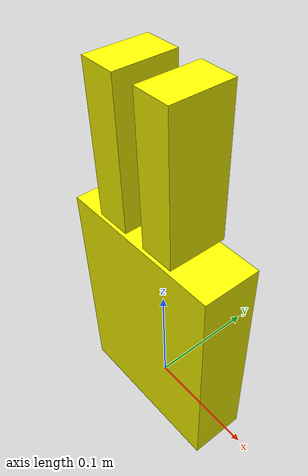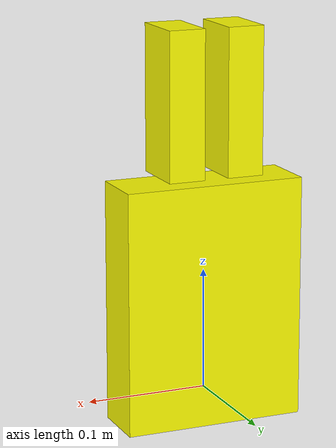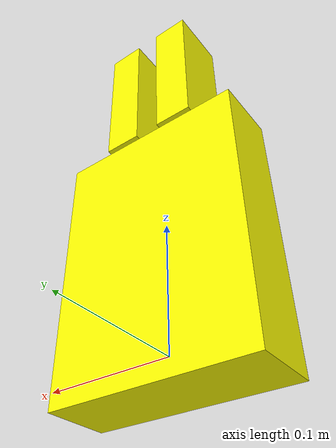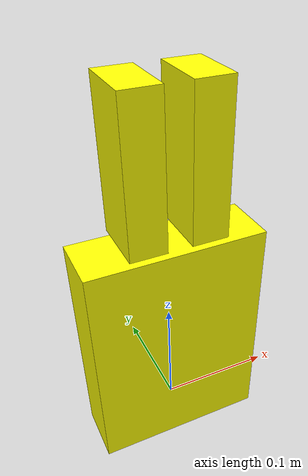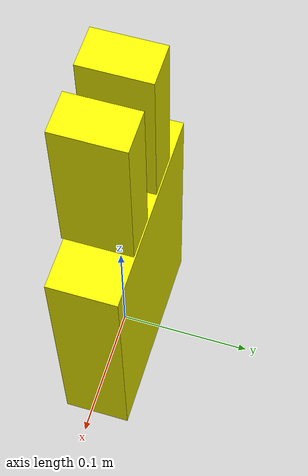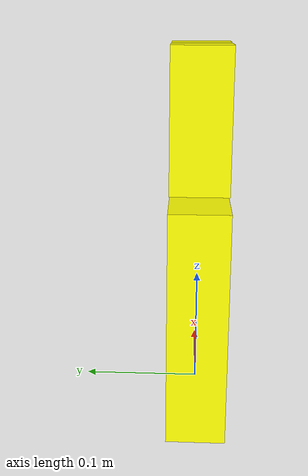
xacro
<?xml version="1.0"?>
<robot xmlns:xacro="http://ros.org/wiki/xacro" name="twofingergripper">
    <xacro:include filename="$(find gripper_pkg)/urdf/grip.urdf.xacro" />
    <xacro:include filename="$(find gripper_pkg)/urdf/grip_transmission.urdf.xacro" />
    <xacro:include filename="$(find gripper_pkg)/urdf/gazebo.urdf.xacro" />
    <xacro:include filename="$(find gripper_pkg)/urdf/gripper_gazebo.urdf.xacro"/>

    <xacro:two_finger_gripper prefix=""/>

    <link name="world"/>

    <joint name="world_joint" type="fixed">
        <parent link="world" />
        <child link = "grip_body" />
        <origin xyz="0.0 0.0 0.0" rpy="0 0 0" />
    </joint>

    <xacro:transmission_ext />
    <xacro:gripper_gazebo_elm />
    <xacro:gazebo_plugin />

</robot>

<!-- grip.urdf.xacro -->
<robot xmlns:xacro="http://ros.org/wiki/xacro" name="grip">

    <xacro:macro name="two_finger_gripper" params="prefix">

        <link name="grip_body">
            <visual>
                <origin rpy="0 0 0" xyz="0 0 0.075"/>
                <geometry>
                    <box size="0.15 0.05 0.2"/>
                </geometry>
                <material name="yellow">
                    <color rgba="1 1 0 1"/>
                </material>
            </visual>
            <inertial>
                <mass value="0.1"/>
                <inertia ixx="0.0067" ixy="0.0" ixz="0.0" iyy="0.0067" iyz="0.0" izz="0.0035"/>
            </inertial>
            <collision>
                <origin rpy="0 0 0" xyz="0 0 0.075"/>
                <geometry>
                    <box size="0.15 0.05 0.2"/>
                </geometry>
            </collision>
        </link>

        <link name="right_finger">
            <visual>
                <origin rpy="0 0 0" xyz="0.025 0 0.24"/>
                <geometry>
                    <box size="0.03 0.05 0.12"/>
                </geometry>
                <material name="yellow">
                    <color rgba="1 1 0 1"/>
                </material>

            </visual>
            <collision>
                <origin rpy="0 0 0" xyz="0.025 0 0.24"/>
                <geometry>
                    <box size="0.03 0.05 0.12"/>
                </geometry>
            </collision>
            <inertial>
                <mass value="0.1"/>
                <inertia ixx="0.0067" ixy="0.0" ixz="0.0" iyy="0.0067" iyz="0.0" izz="0.0035"/>
            </inertial>
        </link>

        <joint name="slide_right" type="prismatic">
            <origin xyz="0 0 0" rpy="0 0 0 "/>
            <parent link= "grip_body"/>
            <child link = "right_finger"/>
            <axis xyz="1 0 0"/>
            <limit effort="30" velocity="1.0" lower="0" upper="0.05" />
            <dynamics damping="0.0" friction="0.0"/>
        </joint>

        <link name="left_finger">
            <visual>
                <origin rpy="0 0 0" xyz="-0.025 0 0.24"/>
                <geometry>
                    <box size="0.03 0.05 0.12"/>
                </geometry>
                <material name="yellow">
                    <color rgba="1 1 0 1"/>
                </material>
            </visual>
            <inertial>
                <mass value="0.1"/>
                <inertia ixx="0.0067" ixy="0.0" ixz="0.0" iyy="0.0067" iyz="0.0" izz="0.0035"/>
            </inertial>

            <collision>
                <origin rpy="0 0 0" xyz="-0.025 0 0.24"/>
                <geometry>
                    <box size="0.03 0.05 0.12"/>
                </geometry>
            </collision>

        </link>

        <joint name="slide_left" type="prismatic">
            <origin xyz="0 0 0" rpy="0 0 0 "/>
            <parent link= "grip_body"/>
            <child link = "left_finger"/>
            <axis xyz="-1 0 0"/>
            <limit effort="30" velocity="1.0" lower="0" upper="0.05" />
            <dynamics damping="0.0" friction="0.0"/>
        </joint>

    </xacro:macro>

</robot>
